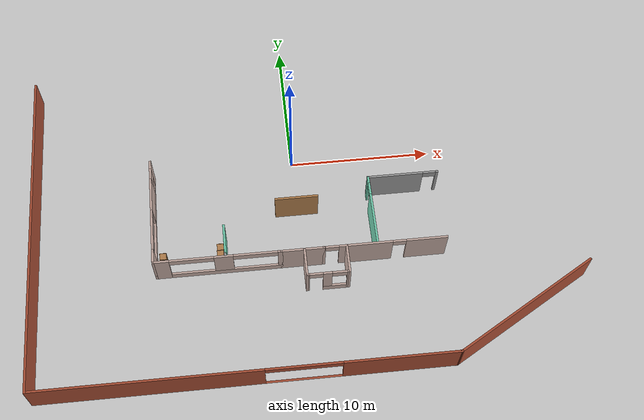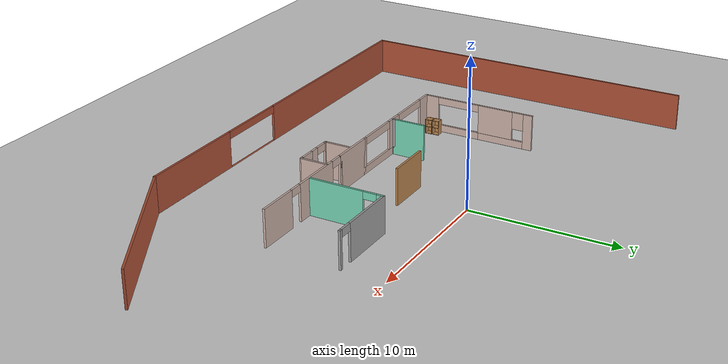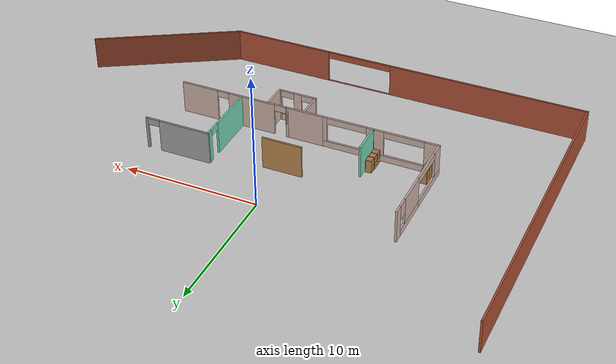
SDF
<sdf version="1.6">
 <world name="default">
  <model name="ground_plane">
   <static>1</static>
   <link name="link">
    <collision name="collision">
     <geometry><plane><normal>0 0 1</normal><size>100 100</size></plane></geometry>
     <surface><friction><ode><mu>100</mu><mu2>50</mu2></ode></friction></surface>
    </collision>
    <visual name="visual">
     <cast_shadows>0</cast_shadows>
     <geometry><plane><normal>0 0 1</normal><size>100 100</size></plane></geometry>
     <material>
      <script><uri>file://media/materials/scripts/gazebo.material</uri><name>Gazebo/Grey</name></script>
     </material>
    </visual>
   </link>
  </model>
  <model name="buildingv2">
   <pose>0.458303 2.11352 0 0 -0 0</pose>
   <link name="Wall_104">
    <collision name="Wall_104_Collision">
     <geometry><box><size>23.5 0.15 2.5</size></box></geometry>
     <pose>0 0 1.25 0 -0 0</pose>
    </collision>
    <visual name="Wall_104_Visual">
     <pose>0 0 1.25 0 -0 0</pose>
     <geometry><box><size>23.5 0.15 2.5</size></box></geometry>
     <material>
      <script><uri>file://media/materials/scripts/gazebo.material</uri><name>Gazebo/Bricks</name></script>
      <ambient>1 1 1 1</ambient>
     </material>
     <meta><layer>0</layer></meta>
    </visual>
    <pose>-18.6101 -6.63577 0 0 0 -1.5708</pose>
   </link>
   <link name="Wall_105">
    <pose>-4.81009 -18.3108 0 0 -0 0</pose>
    <visual name="Wall_105_Visual_0">
     <pose>-6.33047 0 1.25 0 -0 0</pose>
     <geometry><box><size>15.0891 0.15 2.5</size></box></geometry>
     <material>
      <script><uri>file://media/materials/scripts/gazebo.material</uri><name>Gazebo/Bricks</name></script>
      <ambient>1 1 1 1</ambient>
     </material>
     <meta><layer>0</layer></meta>
    </visual>
    <collision name="Wall_105_Collision_0">
     <geometry><box><size>15.0891 0.15 2.5</size></box></geometry>
     <pose>-6.33047 0 1.25 0 -0 0</pose>
    </collision>
    <visual name="Wall_105_Visual_1">
     <pose>7.54453 0 0.00075 0 -0 0</pose>
     <geometry><box><size>12.6609 0.15 0.0015</size></box></geometry>
     <material>
      <script><uri>file://media/materials/scripts/gazebo.material</uri><name>Gazebo/Bricks</name></script>
      <ambient>1 1 1 1</ambient>
     </material>
     <meta><layer>0</layer></meta>
    </visual>
    <collision name="Wall_105_Collision_1">
     <geometry><box><size>12.6609 0.15 0.0015</size></box></geometry>
     <pose>7.54453 0 0.00075 0 -0 0</pose>
    </collision>
    <visual name="Wall_105_Visual_2">
     <pose>10.0445 0 1.25075 0 -0 0</pose>
     <geometry><box><size>7.66093 0.15 2.4985</size></box></geometry>
     <material>
      <script><uri>file://media/materials/scripts/gazebo.material</uri><name>Gazebo/Bricks</name></script>
      <ambient>1 1 1 1</ambient>
     </material>
     <meta><layer>0</layer></meta>
    </visual>
    <collision name="Wall_105_Collision_2">
     <geometry><box><size>7.66093 0.15 2.4985</size></box></geometry>
     <pose>10.0445 0 1.25075 0 -0 0</pose>
    </collision>
    <visual name="Wall_105_Visual_3">
     <pose>3.71407 0 2.25075 0 -0 0</pose>
     <geometry><box><size>5 0.15 0.4985</size></box></geometry>
     <material>
      <script><uri>file://media/materials/scripts/gazebo.material</uri><name>Gazebo/Bricks</name></script>
      <ambient>1 1 1 1</ambient>
     </material>
     <meta><layer>0</layer></meta>
    </visual>
    <collision name="Wall_105_Collision_3">
     <geometry><box><size>5 0.15 0.4985</size></box></geometry>
     <pose>3.71407 0 2.25075 0 -0 0</pose>
    </collision>
   </link>
   <link name="Wall_106">
    <collision name="Wall_106_Collision">
     <geometry><box><size>11.25 0.15 2.5</size></box></geometry>
     <pose>0 0 1.25 0 -0 0</pose>
    </collision>
    <visual name="Wall_106_Visual">
     <pose>0 0 1.25 0 -0 0</pose>
     <geometry><box><size>11.25 0.15 2.5</size></box></geometry>
     <material>
      <script><uri>file://media/materials/scripts/gazebo.material</uri><name>Gazebo/Bricks</name></script>
      <ambient>1 1 1 1</ambient>
     </material>
     <meta><layer>0</layer></meta>
    </visual>
    <pose>13.7964 -15.5358 0 0 -0 0.523599</pose>
   </link>
   <link name="Wall_129">
    <pose>4.67372 -7.55852 0 0 0 -1.5708</pose>
    <visual name="Wall_129_Visual_0">
     <pose>-2.29898 0 1.25 0 -0 0</pose>
     <geometry><box><size>0.481835 0.15 2.5</size></box></geometry>
     <material>
      <script><uri>file://media/materials/scripts/gazebo.material</uri><name>Gazebo/Grey</name></script>
      <ambient>0.435294 0.796078 0.67451 1</ambient>
     </material>
     <meta><layer>0</layer></meta>
    </visual>
    <collision name="Wall_129_Collision_0">
     <geometry><box><size>0.481835 0.15 2.5</size></box></geometry>
     <pose>-2.29898 0 1.25 0 -0 0</pose>
    </collision>
    <visual name="Wall_129_Visual_1">
     <pose>0.690917 0 1.25 0 -0 0</pose>
     <geometry><box><size>3.69797 0.15 2.5</size></box></geometry>
     <material>
      <script><uri>file://media/materials/scripts/gazebo.material</uri><name>Gazebo/Grey</name></script>
      <ambient>0.435294 0.796078 0.67451 1</ambient>
     </material>
     <meta><layer>0</layer></meta>
    </visual>
    <collision name="Wall_129_Collision_1">
     <geometry><box><size>3.69797 0.15 2.5</size></box></geometry>
     <pose>0.690917 0 1.25 0 -0 0</pose>
    </collision>
    <visual name="Wall_129_Visual_2">
     <pose>-1.60807 0 2.25 0 -0 0</pose>
     <geometry><box><size>0.9 0.15 0.5</size></box></geometry>
     <material>
      <script><uri>file://media/materials/scripts/gazebo.material</uri><name>Gazebo/Grey</name></script>
      <ambient>0.435294 0.796078 0.67451 1</ambient>
     </material>
     <meta><layer>0</layer></meta>
    </visual>
    <collision name="Wall_129_Collision_2">
     <geometry><box><size>0.9 0.15 0.5</size></box></geometry>
     <pose>-1.60807 0 2.25 0 -0 0</pose>
    </collision>
   </link>
   <link name="Wall_133">
    <pose>7.09872 -5.06702 0 0 -0 0</pose>
    <visual name="Wall_133_Visual_0">
     <pose>-0.542322 0 1.25 0 -0 0</pose>
     <geometry><box><size>3.91535 0.15 2.5</size></box></geometry>
     <material>
      <script><uri>file://media/materials/scripts/gazebo.material</uri><name>Gazebo/Grey</name></script>
      <ambient>1 1 1 1</ambient>
     </material>
     <meta><layer>0</layer></meta>
    </visual>
    <collision name="Wall_133_Collision_0">
     <geometry><box><size>3.91535 0.15 2.5</size></box></geometry>
     <pose>-0.542322 0 1.25 0 -0 0</pose>
    </collision>
    <visual name="Wall_133_Visual_1">
     <pose>2.40768 0 1.25 0 -0 0</pose>
     <geometry><box><size>0.184645 0.15 2.5</size></box></geometry>
     <material>
      <script><uri>file://media/materials/scripts/gazebo.material</uri><name>Gazebo/Grey</name></script>
      <ambient>1 1 1 1</ambient>
     </material>
     <meta><layer>0</layer></meta>
    </visual>
    <collision name="Wall_133_Collision_1">
     <geometry><box><size>0.184645 0.15 2.5</size></box></geometry>
     <pose>2.40768 0 1.25 0 -0 0</pose>
    </collision>
    <visual name="Wall_133_Visual_2">
     <pose>1.86536 0 2.25 0 -0 0</pose>
     <geometry><box><size>0.9 0.15 0.5</size></box></geometry>
     <material>
      <script><uri>file://media/materials/scripts/gazebo.material</uri><name>Gazebo/Grey</name></script>
      <ambient>1 1 1 1</ambient>
     </material>
     <meta><layer>0</layer></meta>
    </visual>
    <collision name="Wall_133_Collision_2">
     <geometry><box><size>0.9 0.15 0.5</size></box></geometry>
     <pose>1.86536 0 2.25 0 -0 0</pose>
    </collision>
   </link>
   <link name="Wall_153">
    <collision name="Wall_153_Collision">
     <geometry><box><size>2.25 0.15 2.5</size></box></geometry>
     <pose>0 0 1.25 0 -0 0</pose>
    </collision>
    <visual name="Wall_153_Visual">
     <pose>0 0 1.25 0 -0 0</pose>
     <geometry><box><size>2.25 0.15 2.5</size></box></geometry>
     <material>
      <script><uri>file://media/materials/scripts/gazebo.material</uri><name>Gazebo/Grey</name></script>
      <ambient>0.435294 0.796078 0.67451 1</ambient>
     </material>
     <meta><layer>0</layer></meta>
    </visual>
    <pose>-5.57628 -8.92342 0 0 0 -1.5708</pose>
   </link>
   <link name="Wall_154">
    <collision name="Wall_154_Collision">
     <geometry><box><size>0.25 0.15 2.5</size></box></geometry>
     <pose>0 0 1.25 0 -0 0</pose>
    </collision>
    <visual name="Wall_154_Visual">
     <pose>0 0 1.25 0 -0 0</pose>
     <geometry><box><size>0.25 0.15 2.5</size></box></geometry>
     <material>
      <script><uri>file://media/materials/scripts/gazebo.material</uri><name>Gazebo/Grey</name></script>
      <ambient>1 1 1 1</ambient>
     </material>
     <meta><layer>0</layer></meta>
    </visual>
    <pose>-5.57628 -10.0234 0 0 0 -1.5708</pose>
   </link>
   <link name="Wall_165">
    <collision name="Wall_165_Collision">
     <geometry><box><size>2 0.15 2.5</size></box></geometry>
     <pose>0 0 1.25 0 -0 0</pose>
    </collision>
    <visual name="Wall_165_Visual">
     <pose>0 0 1.25 0 -0 0</pose>
     <geometry><box><size>2 0.15 2.5</size></box></geometry>
     <material>
      <script><uri>file://media/materials/scripts/gazebo.material</uri><name>Gazebo/Grey</name></script>
      <ambient>0.760784 0.662745 0.627451 1</ambient>
     </material>
     <meta><layer>0</layer></meta>
    </visual>
    <pose>2.56396 -11.1335 0 0 0 -1.57106</pose>
   </link>
   <link name="Wall_168">
    <pose>1.13872 -12.0584 0 0 -0 3.14159</pose>
    <visual name="Wall_168_Visual_0">
     <pose>-1.37335 0 1.25 0 -0 0</pose>
     <geometry><box><size>0.253306 0.15 2.5</size></box></geometry>
     <material>
      <script><uri>file://media/materials/scripts/gazebo.material</uri><name>Gazebo/Grey</name></script>
      <ambient>0.760784 0.662745 0.627451 1</ambient>
     </material>
     <meta><layer>0</layer></meta>
    </visual>
    <collision name="Wall_168_Collision_0">
     <geometry><box><size>0.253306 0.15 2.5</size></box></geometry>
     <pose>-1.37335 0 1.25 0 -0 0</pose>
    </collision>
    <visual name="Wall_168_Visual_1">
     <pose>1.37958 0 1.25 0 -0 0</pose>
     <geometry><box><size>0.240843 0.15 2.5</size></box></geometry>
     <material>
      <script><uri>file://media/materials/scripts/gazebo.material</uri><name>Gazebo/Grey</name></script>
      <ambient>0.760784 0.662745 0.627451 1</ambient>
     </material>
     <meta><layer>0</layer></meta>
    </visual>
    <collision name="Wall_168_Collision_1">
     <geometry><box><size>0.240843 0.15 2.5</size></box></geometry>
     <pose>1.37958 0 1.25 0 -0 0</pose>
    </collision>
    <visual name="Wall_168_Visual_2">
     <pose>-0.443769 0 0.25 0 -0 0</pose>
     <geometry><box><size>1.60585 0.15 0.5</size></box></geometry>
     <material>
      <script><uri>file://media/materials/scripts/gazebo.material</uri><name>Gazebo/Grey</name></script>
      <ambient>0.760784 0.662745 0.627451 1</ambient>
     </material>
     <meta><layer>0</layer></meta>
    </visual>
    <collision name="Wall_168_Collision_2">
     <geometry><box><size>1.60585 0.15 0.5</size></box></geometry>
     <pose>-0.443769 0 0.25 0 -0 0</pose>
    </collision>
    <visual name="Wall_168_Visual_3">
     <pose>0.056231 0 1.5 0 -0 0</pose>
     <geometry><box><size>0.60585 0.15 2</size></box></geometry>
     <material>
      <script><uri>file://media/materials/scripts/gazebo.material</uri><name>Gazebo/Grey</name></script>
      <ambient>0.760784 0.662745 0.627451 1</ambient>
     </material>
     <meta><layer>0</layer></meta>
    </visual>
    <collision name="Wall_168_Collision_3">
     <geometry><box><size>0.60585 0.15 2</size></box></geometry>
     <pose>0.056231 0 1.5 0 -0 0</pose>
    </collision>
    <visual name="Wall_168_Visual_4">
     <pose>-0.746694 0 2.25 0 -0 0</pose>
     <geometry><box><size>1 0.15 0.5</size></box></geometry>
     <material>
      <script><uri>file://media/materials/scripts/gazebo.material</uri><name>Gazebo/Grey</name></script>
      <ambient>0.760784 0.662745 0.627451 1</ambient>
     </material>
     <meta><layer>0</layer></meta>
    </visual>
    <collision name="Wall_168_Collision_4">
     <geometry><box><size>1 0.15 0.5</size></box></geometry>
     <pose>-0.746694 0 2.25 0 -0 0</pose>
    </collision>
    <visual name="Wall_168_Visual_5">
     <pose>0.809157 0 2.25 0 -0 0</pose>
     <geometry><box><size>0.9 0.15 0.5</size></box></geometry>
     <material>
      <script><uri>file://media/materials/scripts/gazebo.material</uri><name>Gazebo/Grey</name></script>
      <ambient>0.760784 0.662745 0.627451 1</ambient>
     </material>
     <meta><layer>0</layer></meta>
    </visual>
    <collision name="Wall_168_Collision_5">
     <geometry><box><size>0.9 0.15 0.5</size></box></geometry>
     <pose>0.809157 0 2.25 0 -0 0</pose>
    </collision>
   </link>
   <link name="Wall_170">
    <collision name="Wall_170_Collision">
     <geometry><box><size>2 0.15 2.5</size></box></geometry>
     <pose>0 0 1.25 0 -0 0</pose>
    </collision>
    <visual name="Wall_170_Visual">
     <pose>0 0 1.25 0 -0 0</pose>
     <geometry><box><size>2 0.15 2.5</size></box></geometry>
     <material>
      <script><uri>file://media/materials/scripts/gazebo.material</uri><name>Gazebo/Grey</name></script>
      <ambient>0.760784 0.662745 0.627451 1</ambient>
     </material>
     <meta><layer>0</layer></meta>
    </visual>
    <pose>-0.286279 -11.1334 0 0 -0 1.5708</pose>
   </link>
   <link name="Wall_50">
    <collision name="Wall_50_Collision">
     <geometry><box><size>3 0.15 2.5</size></box></geometry>
     <pose>0 0 1.25 0 -0 0</pose>
    </collision>
    <visual name="Wall_50_Visual">
     <pose>0 0 1.25 0 -0 0</pose>
     <geometry><box><size>3 0.15 2.5</size></box></geometry>
     <material>
      <script><uri>file://media/materials/scripts/gazebo.material</uri><name>Gazebo/Wood</name></script>
      <ambient>1 1 1 1</ambient>
     </material>
     <meta><layer>0</layer></meta>
    </visual>
    <pose>-0.451279 -6.17342 0 0 -0 0</pose>
   </link>
   <link name="Wall_63">
    <pose>-10.4263 -6.24842 0 0 0 -1.5708</pose>
    <visual name="Wall_63_Visual_0">
     <pose>-3.67921 0 1.25 0 -0 0</pose>
     <geometry><box><size>0.641579 0.15 2.5</size></box></geometry>
     <material>
      <script><uri>file://media/materials/scripts/gazebo.material</uri><name>Gazebo/Grey</name></script>
      <ambient>0.760784 0.662745 0.627451 1</ambient>
     </material>
     <meta><layer>0</layer></meta>
    </visual>
    <collision name="Wall_63_Collision_0">
     <geometry><box><size>0.641579 0.15 2.5</size></box></geometry>
     <pose>-3.67921 0 1.25 0 -0 0</pose>
    </collision>
    <visual name="Wall_63_Visual_1">
     <pose>-1.7142 0 0.25 0 -0 0</pose>
     <geometry><box><size>3.28843 0.15 0.5</size></box></geometry>
     <material>
      <script><uri>file://media/materials/scripts/gazebo.material</uri><name>Gazebo/Grey</name></script>
      <ambient>0.760784 0.662745 0.627451 1</ambient>
     </material>
     <meta><layer>0</layer></meta>
    </visual>
    <collision name="Wall_63_Collision_1">
     <geometry><box><size>3.28843 0.15 0.5</size></box></geometry>
     <pose>-1.7142 0 0.25 0 -0 0</pose>
    </collision>
    <visual name="Wall_63_Visual_2">
     <pose>1.96501 0 0.25 0 -0 0</pose>
     <geometry><box><size>4.06999 0.15 0.5</size></box></geometry>
     <material>
      <script><uri>file://media/materials/scripts/gazebo.material</uri><name>Gazebo/Grey</name></script>
      <ambient>0.760784 0.662745 0.627451 1</ambient>
     </material>
     <meta><layer>0</layer></meta>
    </visual>
    <collision name="Wall_63_Collision_2">
     <geometry><box><size>4.06999 0.15 0.5</size></box></geometry>
     <pose>1.96501 0 0.25 0 -0 0</pose>
    </collision>
    <visual name="Wall_63_Visual_3">
     <pose>3.46501 0 1.5 0 -0 0</pose>
     <geometry><box><size>1.06999 0.15 2</size></box></geometry>
     <material>
      <script><uri>file://media/materials/scripts/gazebo.material</uri><name>Gazebo/Grey</name></script>
      <ambient>0.760784 0.662745 0.627451 1</ambient>
     </material>
     <meta><layer>0</layer></meta>
    </visual>
    <collision name="Wall_63_Collision_3">
     <geometry><box><size>1.06999 0.15 2</size></box></geometry>
     <pose>3.46501 0 1.5 0 -0 0</pose>
    </collision>
    <visual name="Wall_63_Visual_4">
     <pose>-1.31421 0 1.5 0 -0 0</pose>
     <geometry><box><size>2.48843 0.15 2</size></box></geometry>
     <material>
      <script><uri>file://media/materials/scripts/gazebo.material</uri><name>Gazebo/Grey</name></script>
      <ambient>0.760784 0.662745 0.627451 1</ambient>
     </material>
     <meta><layer>0</layer></meta>
    </visual>
    <collision name="Wall_63_Collision_4">
     <geometry><box><size>2.48843 0.15 2</size></box></geometry>
     <pose>-1.31421 0 1.5 0 -0 0</pose>
    </collision>
    <visual name="Wall_63_Visual_5">
     <pose>-1.31421 0 1.5 0 -0 0</pose>
     <geometry><box><size>2.48843 0.15 2</size></box></geometry>
     <material>
      <script><uri>file://media/materials/scripts/gazebo.material</uri><name>Gazebo/Grey</name></script>
      <ambient>0.760784 0.662745 0.627451 1</ambient>
     </material>
     <meta><layer>0</layer></meta>
    </visual>
    <collision name="Wall_63_Collision_5">
     <geometry><box><size>2.48843 0.15 2</size></box></geometry>
     <pose>-1.31421 0 1.5 0 -0 0</pose>
    </collision>
    <visual name="Wall_63_Visual_6">
     <pose>-2.95842 0 1.9 0 -0 0</pose>
     <geometry><box><size>0.8 0.15 1.2</size></box></geometry>
     <material>
      <script><uri>file://media/materials/scripts/gazebo.material</uri><name>Gazebo/Grey</name></script>
      <ambient>0.760784 0.662745 0.627451 1</ambient>
     </material>
     <meta><layer>0</layer></meta>
    </visual>
    <collision name="Wall_63_Collision_6">
     <geometry><box><size>0.8 0.15 1.2</size></box></geometry>
     <pose>-2.95842 0 1.9 0 -0 0</pose>
    </collision>
    <visual name="Wall_63_Visual_7">
     <pose>1.43001 0 2.25 0 -0 0</pose>
     <geometry><box><size>3 0.15 0.5</size></box></geometry>
     <material>
      <script><uri>file://media/materials/scripts/gazebo.material</uri><name>Gazebo/Grey</name></script>
      <ambient>0.760784 0.662745 0.627451 1</ambient>
     </material>
     <meta><layer>0</layer></meta>
    </visual>
    <collision name="Wall_63_Collision_7">
     <geometry><box><size>3 0.15 0.5</size></box></geometry>
     <pose>1.43001 0 2.25 0 -0 0</pose>
    </collision>
    <visual name="Wall_63_Visual_8">
     <pose>1.43001 0 2.25 0 -0 0</pose>
     <geometry><box><size>3 0.15 0.5</size></box></geometry>
     <material>
      <script><uri>file://media/materials/scripts/gazebo.material</uri><name>Gazebo/Grey</name></script>
      <ambient>0.760784 0.662745 0.627451 1</ambient>
     </material>
     <meta><layer>0</layer></meta>
    </visual>
    <collision name="Wall_63_Collision_8">
     <geometry><box><size>3 0.15 0.5</size></box></geometry>
     <pose>1.43001 0 2.25 0 -0 0</pose>
    </collision>
   </link>
   <link name="Wall_73">
    <pose>-6.12628 -10.1734 0 0 -0 0</pose>
    <visual name="Wall_73_Visual_0">
     <pose>-3.81032 0 1.25 0 -0 0</pose>
     <geometry><box><size>1.12937 0.15 2.5</size></box></geometry>
     <material>
      <script><uri>file://media/materials/scripts/gazebo.material</uri><name>Gazebo/Grey</name></script>
      <ambient>0.760784 0.662745 0.627451 1</ambient>
     </material>
     <meta><layer>0</layer></meta>
    </visual>
    <collision name="Wall_73_Collision_0">
     <geometry><box><size>1.12937 0.15 2.5</size></box></geometry>
     <pose>-3.81032 0 1.25 0 -0 0</pose>
    </collision>
    <visual name="Wall_73_Visual_1">
     <pose>0.564683 0 0.25 0 -0 0</pose>
     <geometry><box><size>7.62063 0.15 0.5</size></box></geometry>
     <material>
      <script><uri>file://media/materials/scripts/gazebo.material</uri><name>Gazebo/Grey</name></script>
      <ambient>0.760784 0.662745 0.627451 1</ambient>
     </material>
     <meta><layer>0</layer></meta>
    </visual>
    <collision name="Wall_73_Collision_1">
     <geometry><box><size>7.62063 0.15 0.5</size></box></geometry>
     <pose>0.564683 0 0.25 0 -0 0</pose>
    </collision>
    <visual name="Wall_73_Visual_2">
     <pose>0.401814 0 1.5 0 -0 0</pose>
     <geometry><box><size>1.2949 0.15 2</size></box></geometry>
     <material>
      <script><uri>file://media/materials/scripts/gazebo.material</uri><name>Gazebo/Grey</name></script>
      <ambient>0.760784 0.662745 0.627451 1</ambient>
     </material>
     <meta><layer>0</layer></meta>
    </visual>
    <collision name="Wall_73_Collision_2">
     <geometry><box><size>1.2949 0.15 2</size></box></geometry>
     <pose>0.401814 0 1.5 0 -0 0</pose>
    </collision>
    <visual name="Wall_73_Visual_3">
     <pose>4.21213 0 1.5 0 -0 0</pose>
     <geometry><box><size>0.325738 0.15 2</size></box></geometry>
     <material>
      <script><uri>file://media/materials/scripts/gazebo.material</uri><name>Gazebo/Grey</name></script>
      <ambient>0.760784 0.662745 0.627451 1</ambient>
     </material>
     <meta><layer>0</layer></meta>
    </visual>
    <collision name="Wall_73_Collision_3">
     <geometry><box><size>0.325738 0.15 2</size></box></geometry>
     <pose>4.21213 0 1.5 0 -0 0</pose>
    </collision>
    <visual name="Wall_73_Visual_4">
     <pose>-1.74563 0 2.25 0 -0 0</pose>
     <geometry><box><size>3 0.15 0.5</size></box></geometry>
     <material>
      <script><uri>file://media/materials/scripts/gazebo.material</uri><name>Gazebo/Grey</name></script>
      <ambient>0.760784 0.662745 0.627451 1</ambient>
     </material>
     <meta><layer>0</layer></meta>
    </visual>
    <collision name="Wall_73_Collision_4">
     <geometry><box><size>3 0.15 0.5</size></box></geometry>
     <pose>-1.74563 0 2.25 0 -0 0</pose>
    </collision>
    <visual name="Wall_73_Visual_5">
     <pose>2.54926 0 2.25 0 -0 0</pose>
     <geometry><box><size>3 0.15 0.5</size></box></geometry>
     <material>
      <script><uri>file://media/materials/scripts/gazebo.material</uri><name>Gazebo/Grey</name></script>
      <ambient>0.760784 0.662745 0.627451 1</ambient>
     </material>
     <meta><layer>0</layer></meta>
    </visual>
    <collision name="Wall_73_Collision_5">
     <geometry><box><size>3 0.15 0.5</size></box></geometry>
     <pose>2.54926 0 2.25 0 -0 0</pose>
    </collision>
   </link>
   <link name="Wall_74">
    <collision name="Wall_74_Collision">
     <geometry><box><size>3 0.15 2.5</size></box></geometry>
     <pose>0 0 1.25 0 -0 0</pose>
    </collision>
    <visual name="Wall_74_Visual">
     <pose>0 0 1.25 0 -0 0</pose>
     <geometry><box><size>3 0.15 2.5</size></box></geometry>
     <material>
      <script><uri>file://media/materials/scripts/gazebo.material</uri><name>Gazebo/Grey</name></script>
      <ambient>0.760784 0.662745 0.627451 1</ambient>
     </material>
     <meta><layer>0</layer></meta>
    </visual>
    <pose>-0.401279 -10.1734 0 0 -0 0</pose>
   </link>
   <link name="Wall_75">
    <pose>5.19872 -10.1734 0 0 -0 0</pose>
    <visual name="Wall_75_Visual_0">
     <pose>-4.15273 0 1.25 0 -0 0</pose>
     <geometry><box><size>0.194547 0.15 2.5</size></box></geometry>
     <material>
      <script><uri>file://media/materials/scripts/gazebo.material</uri><name>Gazebo/Grey</name></script>
      <ambient>0.760784 0.662745 0.627451 1</ambient>
     </material>
     <meta><layer>0</layer></meta>
    </visual>
    <collision name="Wall_75_Collision_0">
     <geometry><box><size>0.194547 0.15 2.5</size></box></geometry>
     <pose>-4.15273 0 1.25 0 -0 0</pose>
    </collision>
    <visual name="Wall_75_Visual_1">
     <pose>-1.3231 0 1.25 0 -0 0</pose>
     <geometry><box><size>3.66471 0.15 2.5</size></box></geometry>
     <material>
      <script><uri>file://media/materials/scripts/gazebo.material</uri><name>Gazebo/Grey</name></script>
      <ambient>0.760784 0.662745 0.627451 1</ambient>
     </material>
     <meta><layer>0</layer></meta>
    </visual>
    <collision name="Wall_75_Collision_1">
     <geometry><box><size>3.66471 0.15 2.5</size></box></geometry>
     <pose>-1.3231 0 1.25 0 -0 0</pose>
    </collision>
    <visual name="Wall_75_Visual_2">
     <pose>2.82963 0 1.25 0 -0 0</pose>
     <geometry><box><size>2.84074 0.15 2.5</size></box></geometry>
     <material>
      <script><uri>file://media/materials/scripts/gazebo.material</uri><name>Gazebo/Grey</name></script>
      <ambient>0.760784 0.662745 0.627451 1</ambient>
     </material>
     <meta><layer>0</layer></meta>
    </visual>
    <collision name="Wall_75_Collision_2">
     <geometry><box><size>2.84074 0.15 2.5</size></box></geometry>
     <pose>2.82963 0 1.25 0 -0 0</pose>
    </collision>
    <visual name="Wall_75_Visual_3">
     <pose>-3.60545 0 2.25 0 -0 0</pose>
     <geometry><box><size>0.9 0.15 0.5</size></box></geometry>
     <material>
      <script><uri>file://media/materials/scripts/gazebo.material</uri><name>Gazebo/Grey</name></script>
      <ambient>0.760784 0.662745 0.627451 1</ambient>
     </material>
     <meta><layer>0</layer></meta>
    </visual>
    <collision name="Wall_75_Collision_3">
     <geometry><box><size>0.9 0.15 0.5</size></box></geometry>
     <pose>-3.60545 0 2.25 0 -0 0</pose>
    </collision>
    <visual name="Wall_75_Visual_4">
     <pose>0.959257 0 2.25 0 -0 0</pose>
     <geometry><box><size>0.9 0.15 0.5</size></box></geometry>
     <material>
      <script><uri>file://media/materials/scripts/gazebo.material</uri><name>Gazebo/Grey</name></script>
      <ambient>0.760784 0.662745 0.627451 1</ambient>
     </material>
     <meta><layer>0</layer></meta>
    </visual>
    <collision name="Wall_75_Collision_4">
     <geometry><box><size>0.9 0.15 0.5</size></box></geometry>
     <pose>0.959257 0 2.25 0 -0 0</pose>
    </collision>
   </link>
   <static>1</static>
  </model>
  <model name="cabinet_clone_1">
   <static>1</static>
   <link name="cabinet_bottom_plate">
    <inertial>
     <pose>0 0 -1 0 -0 0</pose>
     <inertia><ixx>2.05</ixx><ixy>0</ixy><ixz>0</ixz><iyy>2.05</iyy><iyz>0</iyz><izz>2.05</izz></inertia>
     <mass>25</mass>
    </inertial>
    <collision name="cabinet_bottom_plate_geom">
     <pose>0 0 0.01 0 -0 0</pose>
     <geometry><box><size>0.45 0.45 0.02</size></box></geometry>
    </collision>
    <visual name="cabinet_bottom_plate_geom_visual">
     <pose>0 0 0.01 0 -0 0</pose>
     <geometry><box><size>0.45 0.45 0.02</size></box></geometry>
     <material>
      <script><uri>file://media/materials/scripts/gazebo.material</uri><name>Gazebo/Wood</name></script>
     </material>
    </visual>
    <collision name="cabinet_bottom_plate_geom_cabinet_back_plate">
     <pose>0.235 0 0.51 0 -0 0</pose>
     <geometry><box><size>0.02 0.45 1.02</size></box></geometry>
    </collision>
    <visual name="cabinet_bottom_plate_geom_cabinet_back_plate_visual">
     <pose>0.235 0 0.51 0 -0 0</pose>
     <geometry><box><size>0.02 0.45 1.02</size></box></geometry>
     <material>
      <script><uri>file://media/materials/scripts/gazebo.material</uri><name>Gazebo/Wood</name></script>
     </material>
    </visual>
    <collision name="cabinet_bottom_plate_geom_cabinet_left_plate">
     <pose>0 0.235 0.51 0 -0 0</pose>
     <geometry><box><size>0.45 0.02 1.02</size></box></geometry>
    </collision>
    <visual name="cabinet_bottom_plate_geom_cabinet_left_plate_visual">
     <pose>0 0.235 0.51 0 -0 0</pose>
     <geometry><box><size>0.45 0.02 1.02</size></box></geometry>
     <material>
      <script><uri>file://media/materials/scripts/gazebo.material</uri><name>Gazebo/Wood</name></script>
     </material>
    </visual>
    <collision name="cabinet_bottom_plate_geom_cabinet_middle_plate">
     <pose>0 0 0.51 0 -0 0</pose>
     <geometry><box><size>0.45 0.45 0.02</size></box></geometry>
    </collision>
    <visual name="cabinet_bottom_plate_geom_cabinet_middle_plate_visual">
     <pose>0 0 0.51 0 -0 0</pose>
     <geometry><box><size>0.45 0.45 0.02</size></box></geometry>
     <material>
      <script><uri>file://media/materials/scripts/gazebo.material</uri><name>Gazebo/Wood</name></script>
     </material>
    </visual>
    <collision name="cabinet_bottom_plate_geom_cabinet_right_plate">
     <pose>0 -0.235 0.51 0 -0 0</pose>
     <geometry><box><size>0.45 0.02 1.02</size></box></geometry>
    </collision>
    <visual name="cabinet_bottom_plate_geom_cabinet_right_plate_visual">
     <pose>0 -0.235 0.51 0 -0 0</pose>
     <geometry><box><size>0.45 0.02 1.02</size></box></geometry>
     <material>
      <script><uri>file://media/materials/scripts/gazebo.material</uri><name>Gazebo/Wood</name></script>
     </material>
    </visual>
    <collision name="cabinet_bottom_plate_geom_cabinet_top_plate">
     <pose>0 0 1.01 0 -0 0</pose>
     <geometry><box><size>0.45 0.45 0.02</size></box></geometry>
    </collision>
    <visual name="cabinet_bottom_plate_geom_cabinet_top_plate_visual">
     <pose>0 0 1.01 0 -0 0</pose>
     <geometry><box><size>0.45 0.45 0.02</size></box></geometry>
     <material>
      <script><uri>file://media/materials/scripts/gazebo.material</uri><name>Gazebo/Wood</name></script>
     </material>
    </visual>
   </link>
   <pose>-9.39749 -7.47225 0 0 0 -3.13836</pose>
  </model>
  <model name="cabinet_clone_2">
   <static>1</static>
   <link name="cabinet_bottom_plate">
    <inertial>
     <pose>0 0 -1 0 -0 0</pose>
     <inertia><ixx>2.05</ixx><ixy>0</ixy><ixz>0</ixz><iyy>2.05</iyy><iyz>0</iyz><izz>2.05</izz></inertia>
     <mass>25</mass>
    </inertial>
    <collision name="cabinet_bottom_plate_geom">
     <pose>0 0 0.01 0 -0 0</pose>
     <geometry><box><size>0.45 0.45 0.02</size></box></geometry>
    </collision>
    <visual name="cabinet_bottom_plate_geom_visual">
     <pose>0 0 0.01 0 -0 0</pose>
     <geometry><box><size>0.45 0.45 0.02</size></box></geometry>
     <material>
      <script><uri>file://media/materials/scripts/gazebo.material</uri><name>Gazebo/Wood</name></script>
     </material>
    </visual>
    <collision name="cabinet_bottom_plate_geom_cabinet_back_plate">
     <pose>0.235 0 0.51 0 -0 0</pose>
     <geometry><box><size>0.02 0.45 1.02</size></box></geometry>
    </collision>
    <visual name="cabinet_bottom_plate_geom_cabinet_back_plate_visual">
     <pose>0.235 0 0.51 0 -0 0</pose>
     <geometry><box><size>0.02 0.45 1.02</size></box></geometry>
     <material>
      <script><uri>file://media/materials/scripts/gazebo.material</uri><name>Gazebo/Wood</name></script>
     </material>
    </visual>
    <collision name="cabinet_bottom_plate_geom_cabinet_left_plate">
     <pose>0 0.235 0.51 0 -0 0</pose>
     <geometry><box><size>0.45 0.02 1.02</size></box></geometry>
    </collision>
    <visual name="cabinet_bottom_plate_geom_cabinet_left_plate_visual">
     <pose>0 0.235 0.51 0 -0 0</pose>
     <geometry><box><size>0.45 0.02 1.02</size></box></geometry>
     <material>
      <script><uri>file://media/materials/scripts/gazebo.material</uri><name>Gazebo/Wood</name></script>
     </material>
    </visual>
    <collision name="cabinet_bottom_plate_geom_cabinet_middle_plate">
     <pose>0 0 0.51 0 -0 0</pose>
     <geometry><box><size>0.45 0.45 0.02</size></box></geometry>
    </collision>
    <visual name="cabinet_bottom_plate_geom_cabinet_middle_plate_visual">
     <pose>0 0 0.51 0 -0 0</pose>
     <geometry><box><size>0.45 0.45 0.02</size></box></geometry>
     <material>
      <script><uri>file://media/materials/scripts/gazebo.material</uri><name>Gazebo/Wood</name></script>
     </material>
    </visual>
    <collision name="cabinet_bottom_plate_geom_cabinet_right_plate">
     <pose>0 -0.235 0.51 0 -0 0</pose>
     <geometry><box><size>0.45 0.02 1.02</size></box></geometry>
    </collision>
    <visual name="cabinet_bottom_plate_geom_cabinet_right_plate_visual">
     <pose>0 -0.235 0.51 0 -0 0</pose>
     <geometry><box><size>0.45 0.02 1.02</size></box></geometry>
     <material>
      <script><uri>file://media/materials/scripts/gazebo.material</uri><name>Gazebo/Wood</name></script>
     </material>
    </visual>
    <collision name="cabinet_bottom_plate_geom_cabinet_top_plate">
     <pose>0 0 1.01 0 -0 0</pose>
     <geometry><box><size>0.45 0.45 0.02</size></box></geometry>
    </collision>
    <visual name="cabinet_bottom_plate_geom_cabinet_top_plate_visual">
     <pose>0 0 1.01 0 -0 0</pose>
     <geometry><box><size>0.45 0.45 0.02</size></box></geometry>
     <material>
      <script><uri>file://media/materials/scripts/gazebo.material</uri><name>Gazebo/Wood</name></script>
     </material>
    </visual>
   </link>
   <pose>-9.4218 -6.96072 0 0 0 -3.13836</pose>
  </model>
  <model name="cabinet_clone_3">
   <static>1</static>
   <link name="cabinet_bottom_plate">
    <inertial>
     <pose>0 0 -1 0 -0 0</pose>
     <inertia><ixx>2.05</ixx><ixy>0</ixy><ixz>0</ixz><iyy>2.05</iyy><iyz>0</iyz><izz>2.05</izz></inertia>
     <mass>25</mass>
    </inertial>
    <collision name="cabinet_bottom_plate_geom">
     <pose>0 0 0.01 0 -0 0</pose>
     <geometry><box><size>0.45 0.45 0.02</size></box></geometry>
    </collision>
    <visual name="cabinet_bottom_plate_geom_visual">
     <pose>0 0 0.01 0 -0 0</pose>
     <geometry><box><size>0.45 0.45 0.02</size></box></geometry>
     <material>
      <script><uri>file://media/materials/scripts/gazebo.material</uri><name>Gazebo/Wood</name></script>
     </material>
    </visual>
    <collision name="cabinet_bottom_plate_geom_cabinet_back_plate">
     <pose>0.235 0 0.51 0 -0 0</pose>
     <geometry><box><size>0.02 0.45 1.02</size></box></geometry>
    </collision>
    <visual name="cabinet_bottom_plate_geom_cabinet_back_plate_visual">
     <pose>0.235 0 0.51 0 -0 0</pose>
     <geometry><box><size>0.02 0.45 1.02</size></box></geometry>
     <material>
      <script><uri>file://media/materials/scripts/gazebo.material</uri><name>Gazebo/Wood</name></script>
     </material>
    </visual>
    <collision name="cabinet_bottom_plate_geom_cabinet_left_plate">
     <pose>0 0.235 0.51 0 -0 0</pose>
     <geometry><box><size>0.45 0.02 1.02</size></box></geometry>
    </collision>
    <visual name="cabinet_bottom_plate_geom_cabinet_left_plate_visual">
     <pose>0 0.235 0.51 0 -0 0</pose>
     <geometry><box><size>0.45 0.02 1.02</size></box></geometry>
     <material>
      <script><uri>file://media/materials/scripts/gazebo.material</uri><name>Gazebo/Wood</name></script>
     </material>
    </visual>
    <collision name="cabinet_bottom_plate_geom_cabinet_middle_plate">
     <pose>0 0 0.51 0 -0 0</pose>
     <geometry><box><size>0.45 0.45 0.02</size></box></geometry>
    </collision>
    <visual name="cabinet_bottom_plate_geom_cabinet_middle_plate_visual">
     <pose>0 0 0.51 0 -0 0</pose>
     <geometry><box><size>0.45 0.45 0.02</size></box></geometry>
     <material>
      <script><uri>file://media/materials/scripts/gazebo.material</uri><name>Gazebo/Wood</name></script>
     </material>
    </visual>
    <collision name="cabinet_bottom_plate_geom_cabinet_right_plate">
     <pose>0 -0.235 0.51 0 -0 0</pose>
     <geometry><box><size>0.45 0.02 1.02</size></box></geometry>
    </collision>
    <visual name="cabinet_bottom_plate_geom_cabinet_right_plate_visual">
     <pose>0 -0.235 0.51 0 -0 0</pose>
     <geometry><box><size>0.45 0.02 1.02</size></box></geometry>
     <material>
      <script><uri>file://media/materials/scripts/gazebo.material</uri><name>Gazebo/Wood</name></script>
     </material>
    </visual>
    <collision name="cabinet_bottom_plate_geom_cabinet_top_plate">
     <pose>0 0 1.01 0 -0 0</pose>
     <geometry><box><size>0.45 0.45 0.02</size></box></geometry>
    </collision>
    <visual name="cabinet_bottom_plate_geom_cabinet_top_plate_visual">
     <pose>0 0 1.01 0 -0 0</pose>
     <geometry><box><size>0.45 0.45 0.02</size></box></geometry>
     <material>
      <script><uri>file://media/materials/scripts/gazebo.material</uri><name>Gazebo/Wood</name></script>
     </material>
    </visual>
   </link>
   <pose>-5.51572 -7.10166 0 0 -0 0.002353</pose>
  </model>
  <model name="cabinet_clone_3_clone">
   <static>1</static>
   <link name="cabinet_bottom_plate">
    <inertial>
     <pose>0 0 -1 0 -0 0</pose>
     <inertia><ixx>2.05</ixx><ixy>0</ixy><ixz>0</ixz><iyy>2.05</iyy><iyz>0</iyz><izz>2.05</izz></inertia>
     <mass>25</mass>
    </inertial>
    <collision name="cabinet_bottom_plate_geom">
     <pose>0 0 0.01 0 -0 0</pose>
     <geometry><box><size>0.45 0.45 0.02</size></box></geometry>
    </collision>
    <visual name="cabinet_bottom_plate_geom_visual">
     <pose>0 0 0.01 0 -0 0</pose>
     <geometry><box><size>0.45 0.45 0.02</size></box></geometry>
     <material>
      <script><uri>file://media/materials/scripts/gazebo.material</uri><name>Gazebo/Wood</name></script>
     </material>
    </visual>
    <collision name="cabinet_bottom_plate_geom_cabinet_back_plate">
     <pose>0.235 0 0.51 0 -0 0</pose>
     <geometry><box><size>0.02 0.45 1.02</size></box></geometry>
    </collision>
    <visual name="cabinet_bottom_plate_geom_cabinet_back_plate_visual">
     <pose>0.235 0 0.51 0 -0 0</pose>
     <geometry><box><size>0.02 0.45 1.02</size></box></geometry>
     <material>
      <script><uri>file://media/materials/scripts/gazebo.material</uri><name>Gazebo/Wood</name></script>
     </material>
    </visual>
    <collision name="cabinet_bottom_plate_geom_cabinet_left_plate">
     <pose>0 0.235 0.51 0 -0 0</pose>
     <geometry><box><size>0.45 0.02 1.02</size></box></geometry>
    </collision>
    <visual name="cabinet_bottom_plate_geom_cabinet_left_plate_visual">
     <pose>0 0.235 0.51 0 -0 0</pose>
     <geometry><box><size>0.45 0.02 1.02</size></box></geometry>
     <material>
      <script><uri>file://media/materials/scripts/gazebo.material</uri><name>Gazebo/Wood</name></script>
     </material>
    </visual>
    <collision name="cabinet_bottom_plate_geom_cabinet_middle_plate">
     <pose>0 0 0.51 0 -0 0</pose>
     <geometry><box><size>0.45 0.45 0.02</size></box></geometry>
    </collision>
    <visual name="cabinet_bottom_plate_geom_cabinet_middle_plate_visual">
     <pose>0 0 0.51 0 -0 0</pose>
     <geometry><box><size>0.45 0.45 0.02</size></box></geometry>
     <material>
      <script><uri>file://media/materials/scripts/gazebo.material</uri><name>Gazebo/Wood</name></script>
     </material>
    </visual>
    <collision name="cabinet_bottom_plate_geom_cabinet_right_plate">
     <pose>0 -0.235 0.51 0 -0 0</pose>
     <geometry><box><size>0.45 0.02 1.02</size></box></geometry>
    </collision>
    <visual name="cabinet_bottom_plate_geom_cabinet_right_plate_visual">
     <pose>0 -0.235 0.51 0 -0 0</pose>
     <geometry><box><size>0.45 0.02 1.02</size></box></geometry>
     <material>
      <script><uri>file://media/materials/scripts/gazebo.material</uri><name>Gazebo/Wood</name></script>
     </material>
    </visual>
    <collision name="cabinet_bottom_plate_geom_cabinet_top_plate">
     <pose>0 0 1.01 0 -0 0</pose>
     <geometry><box><size>0.45 0.45 0.02</size></box></geometry>
    </collision>
    <visual name="cabinet_bottom_plate_geom_cabinet_top_plate_visual">
     <pose>0 0 1.01 0 -0 0</pose>
     <geometry><box><size>0.45 0.45 0.02</size></box></geometry>
     <material>
      <script><uri>file://media/materials/scripts/gazebo.material</uri><name>Gazebo/Wood</name></script>
     </material>
    </visual>
   </link>
   <pose>-5.49225 -6.61061 0 0 -0 0.002353</pose>
  </model>
  <model name="cabinet_clone_3_clone_0">
   <static>1</static>
   <link name="cabinet_bottom_plate">
    <inertial>
     <pose>0 0 -1 0 -0 0</pose>
     <inertia><ixx>2.05</ixx><ixy>0</ixy><ixz>0</ixz><iyy>2.05</iyy><iyz>0</iyz><izz>2.05</izz></inertia>
     <mass>25</mass>
    </inertial>
    <collision name="cabinet_bottom_plate_geom">
     <pose>0 0 0.01 0 -0 0</pose>
     <geometry><box><size>0.45 0.45 0.02</size></box></geometry>
    </collision>
    <visual name="cabinet_bottom_plate_geom_visual">
     <pose>0 0 0.01 0 -0 0</pose>
     <geometry><box><size>0.45 0.45 0.02</size></box></geometry>
     <material>
      <script><uri>file://media/materials/scripts/gazebo.material</uri><name>Gazebo/Wood</name></script>
     </material>
    </visual>
    <collision name="cabinet_bottom_plate_geom_cabinet_back_plate">
     <pose>0.235 0 0.51 0 -0 0</pose>
     <geometry><box><size>0.02 0.45 1.02</size></box></geometry>
    </collision>
    <visual name="cabinet_bottom_plate_geom_cabinet_back_plate_visual">
     <pose>0.235 0 0.51 0 -0 0</pose>
     <geometry><box><size>0.02 0.45 1.02</size></box></geometry>
     <material>
      <script><uri>file://media/materials/scripts/gazebo.material</uri><name>Gazebo/Wood</name></script>
     </material>
    </visual>
    <collision name="cabinet_bottom_plate_geom_cabinet_left_plate">
     <pose>0 0.235 0.51 0 -0 0</pose>
     <geometry><box><size>0.45 0.02 1.02</size></box></geometry>
    </collision>
    <visual name="cabinet_bottom_plate_geom_cabinet_left_plate_visual">
     <pose>0 0.235 0.51 0 -0 0</pose>
     <geometry><box><size>0.45 0.02 1.02</size></box></geometry>
     <material>
      <script><uri>file://media/materials/scripts/gazebo.material</uri><name>Gazebo/Wood</name></script>
     </material>
    </visual>
    <collision name="cabinet_bottom_plate_geom_cabinet_middle_plate">
     <pose>0 0 0.51 0 -0 0</pose>
     <geometry><box><size>0.45 0.45 0.02</size></box></geometry>
    </collision>
    <visual name="cabinet_bottom_plate_geom_cabinet_middle_plate_visual">
     <pose>0 0 0.51 0 -0 0</pose>
     <geometry><box><size>0.45 0.45 0.02</size></box></geometry>
     <material>
      <script><uri>file://media/materials/scripts/gazebo.material</uri><name>Gazebo/Wood</name></script>
     </material>
    </visual>
    <collision name="cabinet_bottom_plate_geom_cabinet_right_plate">
     <pose>0 -0.235 0.51 0 -0 0</pose>
     <geometry><box><size>0.45 0.02 1.02</size></box></geometry>
    </collision>
    <visual name="cabinet_bottom_plate_geom_cabinet_right_plate_visual">
     <pose>0 -0.235 0.51 0 -0 0</pose>
     <geometry><box><size>0.45 0.02 1.02</size></box></geometry>
     <material>
      <script><uri>file://media/materials/scripts/gazebo.material</uri><name>Gazebo/Wood</name></script>
     </material>
    </visual>
    <collision name="cabinet_bottom_plate_geom_cabinet_top_plate">
     <pose>0 0 1.01 0 -0 0</pose>
     <geometry><box><size>0.45 0.45 0.02</size></box></geometry>
    </collision>
    <visual name="cabinet_bottom_plate_geom_cabinet_top_plate_visual">
     <pose>0 0 1.01 0 -0 0</pose>
     <geometry><box><size>0.45 0.45 0.02</size></box></geometry>
     <material>
      <script><uri>file://media/materials/scripts/gazebo.material</uri><name>Gazebo/Wood</name></script>
     </material>
    </visual>
   </link>
   <pose>-5.51884 -7.60037 0 0 -0 0.002353</pose>
  </model>
 </world>
</sdf>
